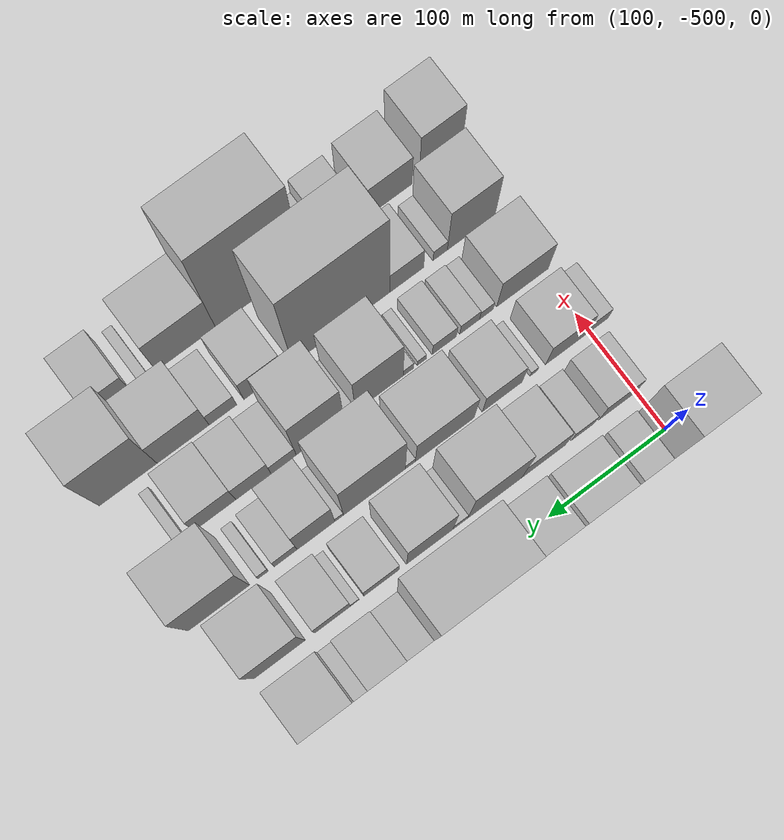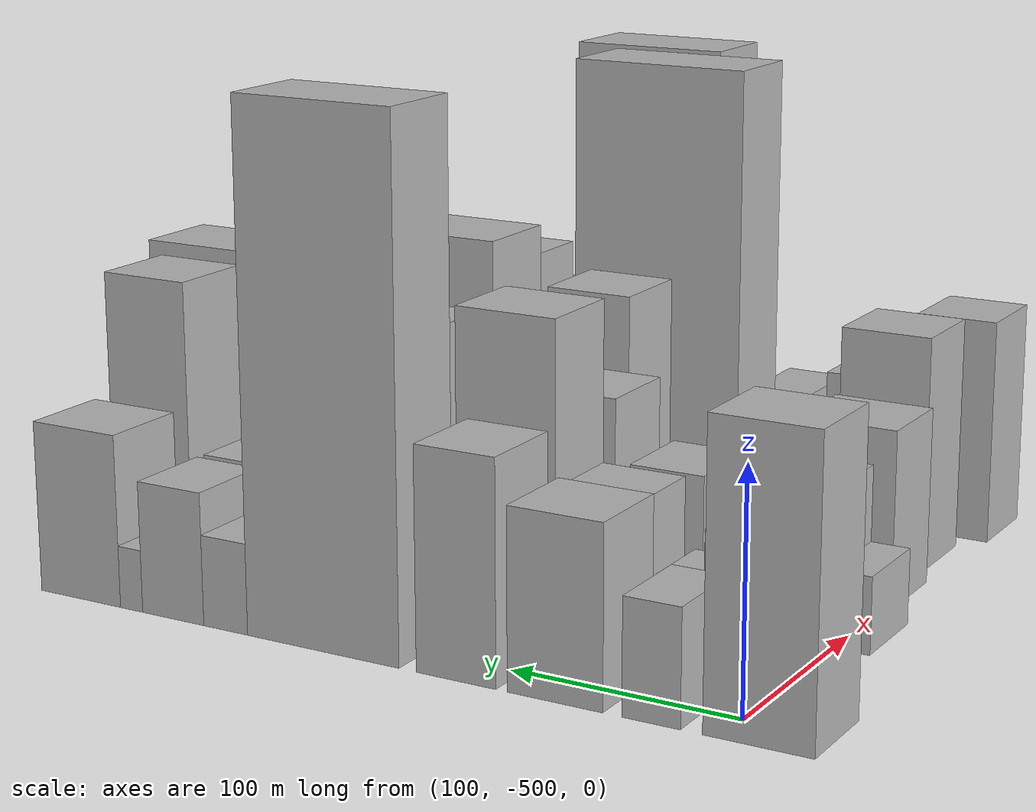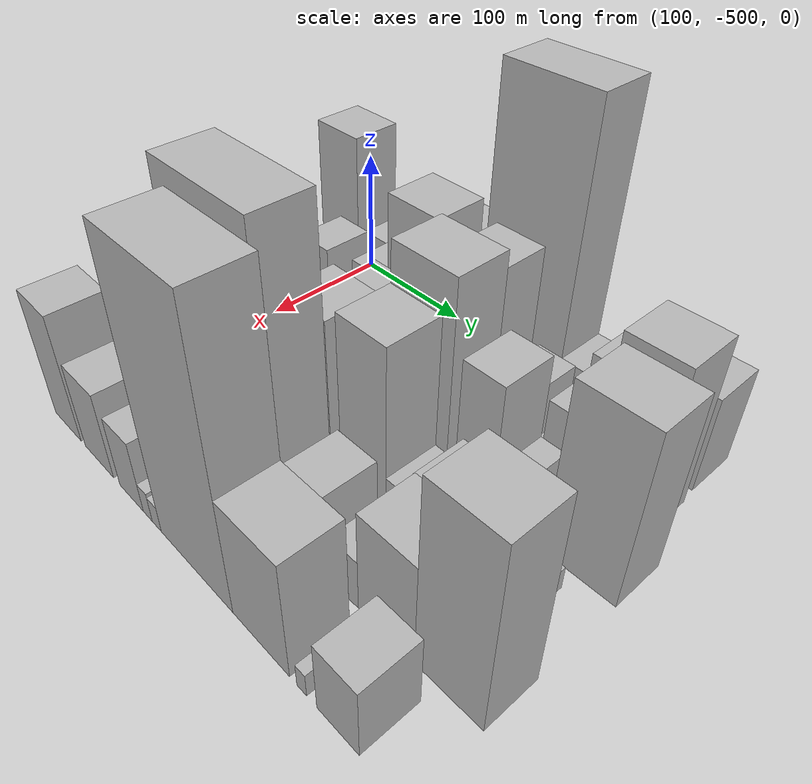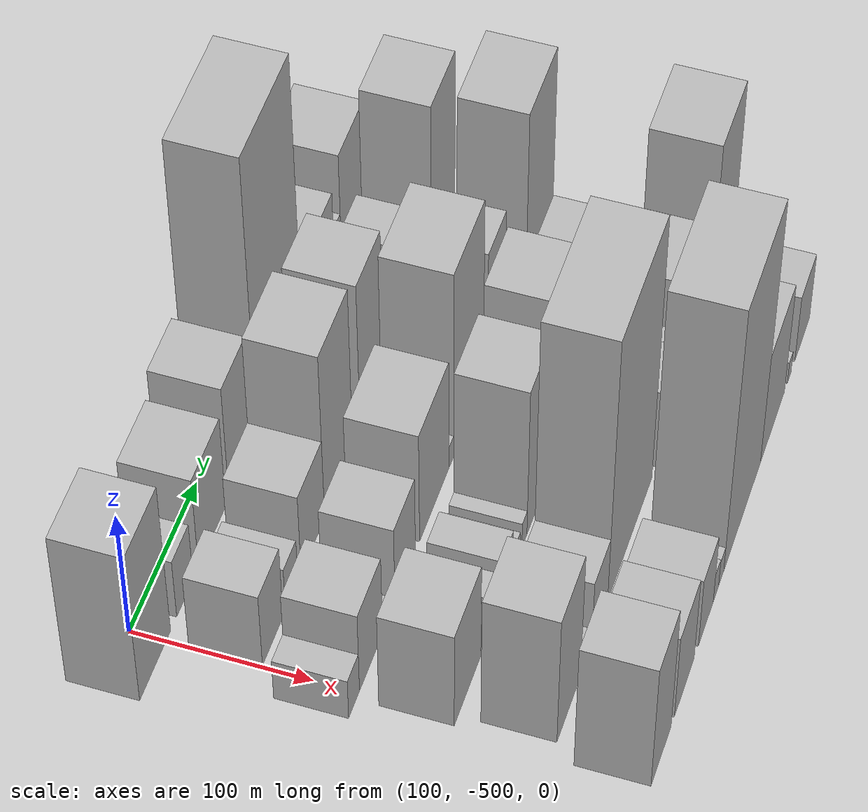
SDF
<sdf version="1.6">
 <world name="default">
  <model name="building_9">
   <static>1</static>
   <pose>100.0000 -515.5603 0 0.000000 0.000000 0.000000</pose>
   <link name="link">
    <pose>0 0 61.50 0 0 0</pose>
    <collision name="collision"><geometry><box><size>40.0000 44.9489 123.0000</size></box></geometry></collision>
    <visual name="visual">
     <cast_shadows>0</cast_shadows>
     <geometry><box><size>40.0000 44.9489 123.0000</size></box></geometry>
     <material>
      <script>
       <uri>model://HANNAS_wall/materials/scripts</uri>
       <uri>model://HANNAS_wall/materials/textures</uri>
       <name>vrc/HANNAS_wall</name>
      </script>
     </material>
    </visual>
   </link>
  </model>
  <model name="building_10">
   <static>1</static>
   <pose>100.0000 -471.8173 0 0.000000 0.000000 0.000000</pose>
   <link name="link">
    <pose>0 0 24.00 0 0 0</pose>
    <collision name="collision"><geometry><box><size>40.0000 24.5371 48.0000</size></box></geometry></collision>
    <visual name="visual">
     <cast_shadows>0</cast_shadows>
     <geometry><box><size>40.0000 24.5371 48.0000</size></box></geometry>
     <material>
      <script>
       <uri>model://HANNAS_wall/materials/scripts</uri>
       <uri>model://HANNAS_wall/materials/textures</uri>
       <name>vrc/HANNAS_wall</name>
      </script>
     </material>
    </visual>
   </link>
  </model>
  <model name="building_11">
   <static>1</static>
   <pose>100.0000 -430.7226 0 0.000000 0.000000 0.000000</pose>
   <link name="link">
    <pose>0 0 37.50 0 0 0</pose>
    <collision name="collision"><geometry><box><size>40.0000 41.6523 75.0000</size></box></geometry></collision>
    <visual name="visual">
     <cast_shadows>0</cast_shadows>
     <geometry><box><size>40.0000 41.6523 75.0000</size></box></geometry>
     <material>
      <script>
       <uri>model://HANNAS_wall/materials/scripts</uri>
       <uri>model://HANNAS_wall/materials/textures</uri>
       <name>vrc/HANNAS_wall</name>
      </script>
     </material>
    </visual>
   </link>
  </model>
  <model name="building_12">
   <static>1</static>
   <pose>100.0000 -386.7678 0 0.000000 0.000000 0.000000</pose>
   <link name="link">
    <pose>0 0 46.50 0 0 0</pose>
    <collision name="collision"><geometry><box><size>40.0000 36.2573 93.0000</size></box></geometry></collision>
    <visual name="visual">
     <cast_shadows>0</cast_shadows>
     <geometry><box><size>40.0000 36.2573 93.0000</size></box></geometry>
     <material>
      <script>
       <uri>model://HANNAS_wall/materials/scripts</uri>
       <uri>model://HANNAS_wall/materials/textures</uri>
       <name>vrc/HANNAS_wall</name>
      </script>
     </material>
    </visual>
   </link>
  </model>
  <model name="building_13">
   <static>1</static>
   <pose>100.0000 -324.0436 0 0.000000 0.000000 0.000000</pose>
   <link name="link">
    <pose>0 0 111.00 0 0 0</pose>
    <collision name="collision"><geometry><box><size>40.0000 73.1910 222.0000</size></box></geometry></collision>
    <visual name="visual">
     <cast_shadows>0</cast_shadows>
     <geometry><box><size>40.0000 73.1910 222.0000</size></box></geometry>
     <material>
      <script>
       <uri>model://HANNAS_wall/materials/scripts</uri>
       <uri>model://HANNAS_wall/materials/textures</uri>
       <name>vrc/HANNAS_wall</name>
      </script>
     </material>
    </visual>
   </link>
  </model>
  <model name="building_14">
   <static>1</static>
   <pose>100.0000 -276.3522 0 0.000000 0.000000 0.000000</pose>
   <link name="link">
    <pose>0 0 19.50 0 0 0</pose>
    <collision name="collision"><geometry><box><size>40.0000 22.1919 39.0000</size></box></geometry></collision>
    <visual name="visual">
     <cast_shadows>0</cast_shadows>
     <geometry><box><size>40.0000 22.1919 39.0000</size></box></geometry>
     <material>
      <script>
       <uri>model://HANNAS_wall/materials/scripts</uri>
       <uri>model://HANNAS_wall/materials/textures</uri>
       <name>vrc/HANNAS_wall</name>
      </script>
     </material>
    </visual>
   </link>
  </model>
  <model name="building_15">
   <static>1</static>
   <pose>100.0000 -249.4096 0 0.000000 0.000000 0.000000</pose>
   <link name="link">
    <pose>0 0 28.50 0 0 0</pose>
    <collision name="collision"><geometry><box><size>40.0000 31.6933 57.0000</size></box></geometry></collision>
    <visual name="visual">
     <cast_shadows>0</cast_shadows>
     <geometry><box><size>40.0000 31.6933 57.0000</size></box></geometry>
     <material>
      <script>
       <uri>model://HANNAS_wall/materials/scripts</uri>
       <uri>model://HANNAS_wall/materials/textures</uri>
       <name>vrc/HANNAS_wall</name>
      </script>
     </material>
    </visual>
   </link>
  </model>
  <model name="building_16">
   <static>1</static>
   <pose>100.0000 -227.6855 0 0.000000 0.000000 0.000000</pose>
   <link name="link">
    <pose>0 0 13.50 0 0 0</pose>
    <collision name="collision"><geometry><box><size>40.0000 11.7548 27.0000</size></box></geometry></collision>
    <visual name="visual">
     <cast_shadows>0</cast_shadows>
     <geometry><box><size>40.0000 11.7548 27.0000</size></box></geometry>
     <material>
      <script>
       <uri>model://HANNAS_wall/materials/scripts</uri>
       <uri>model://HANNAS_wall/materials/textures</uri>
       <name>vrc/HANNAS_wall</name>
      </script>
     </material>
    </visual>
   </link>
  </model>
  <model name="building_17">
   <static>1</static>
   <pose>100.0000 -200.4722 0 0.000000 0.000000 0.000000</pose>
   <link name="link">
    <pose>0 0 37.50 0 0 0</pose>
    <collision name="collision"><geometry><box><size>40.0000 42.6718 75.0000</size></box></geometry></collision>
    <visual name="visual">
     <cast_shadows>0</cast_shadows>
     <geometry><box><size>40.0000 42.6718 75.0000</size></box></geometry>
     <material>
      <script>
       <uri>model://HANNAS_wall/materials/scripts</uri>
       <uri>model://HANNAS_wall/materials/textures</uri>
       <name>vrc/HANNAS_wall</name>
      </script>
     </material>
    </visual>
   </link>
  </model>
  <model name="building_57">
   <static>1</static>
   <pose>152.0000 -483.3467 0 0.000000 0.000000 0.000000</pose>
   <link name="link">
    <pose>0 0 30.00 0 0 0</pose>
    <collision name="collision"><geometry><box><size>40.0000 31.4739 60.0000</size></box></geometry></collision>
    <visual name="visual">
     <cast_shadows>0</cast_shadows>
     <geometry><box><size>40.0000 31.4739 60.0000</size></box></geometry>
     <material>
      <script>
       <uri>model://HANNAS_wall/materials/scripts</uri>
       <uri>model://HANNAS_wall/materials/textures</uri>
       <name>vrc/HANNAS_wall</name>
      </script>
     </material>
    </visual>
   </link>
  </model>
  <model name="building_58">
   <static>1</static>
   <pose>152.0000 -453.8297 0 0.000000 0.000000 0.000000</pose>
   <link name="link">
    <pose>0 0 18.00 0 0 0</pose>
    <collision name="collision"><geometry><box><size>40.0000 19.5602 36.0000</size></box></geometry></collision>
    <visual name="visual">
     <cast_shadows>0</cast_shadows>
     <geometry><box><size>40.0000 19.5602 36.0000</size></box></geometry>
     <material>
      <script>
       <uri>model://HANNAS_wall/materials/scripts</uri>
       <uri>model://HANNAS_wall/materials/textures</uri>
       <name>vrc/HANNAS_wall</name>
      </script>
     </material>
    </visual>
   </link>
  </model>
  <model name="building_59">
   <static>1</static>
   <pose>152.0000 -420.2904 0 0.000000 0.000000 0.000000</pose>
   <link name="link">
    <pose>0 0 33.00 0 0 0</pose>
    <collision name="collision"><geometry><box><size>40.0000 37.5183 66.0000</size></box></geometry></collision>
    <visual name="visual">
     <cast_shadows>0</cast_shadows>
     <geometry><box><size>40.0000 37.5183 66.0000</size></box></geometry>
     <material>
      <script>
       <uri>model://HANNAS_wall/materials/scripts</uri>
       <uri>model://HANNAS_wall/materials/textures</uri>
       <name>vrc/HANNAS_wall</name>
      </script>
     </material>
    </visual>
   </link>
  </model>
  <model name="building_60">
   <static>1</static>
   <pose>152.0000 -378.5794 0 0.000000 0.000000 0.000000</pose>
   <link name="link">
    <pose>0 0 67.50 0 0 0</pose>
    <collision name="collision"><geometry><box><size>40.0000 45.9036 135.0000</size></box></geometry></collision>
    <visual name="visual">
     <cast_shadows>0</cast_shadows>
     <geometry><box><size>40.0000 45.9036 135.0000</size></box></geometry>
     <material>
      <script>
       <uri>model://HANNAS_wall/materials/scripts</uri>
       <uri>model://HANNAS_wall/materials/textures</uri>
       <name>vrc/HANNAS_wall</name>
      </script>
     </material>
    </visual>
   </link>
  </model>
  <model name="building_61">
   <static>1</static>
   <pose>152.0000 -349.3866 0 0.000000 0.000000 0.000000</pose>
   <link name="link">
    <pose>0 0 13.50 0 0 0</pose>
    <collision name="collision"><geometry><box><size>40.0000 12.4821 27.0000</size></box></geometry></collision>
    <visual name="visual">
     <cast_shadows>0</cast_shadows>
     <geometry><box><size>40.0000 12.4821 27.0000</size></box></geometry>
     <material>
      <script>
       <uri>model://HANNAS_wall/materials/scripts</uri>
       <uri>model://HANNAS_wall/materials/textures</uri>
       <name>vrc/HANNAS_wall</name>
      </script>
     </material>
    </visual>
   </link>
  </model>
  <model name="building_62">
   <static>1</static>
   <pose>152.0000 -323.6726 0 0.000000 0.000000 0.000000</pose>
   <link name="link">
    <pose>0 0 61.50 0 0 0</pose>
    <collision name="collision"><geometry><box><size>40.0000 38.9457 123.0000</size></box></geometry></collision>
    <visual name="visual">
     <cast_shadows>0</cast_shadows>
     <geometry><box><size>40.0000 38.9457 123.0000</size></box></geometry>
     <material>
      <script>
       <uri>model://HANNAS_wall/materials/scripts</uri>
       <uri>model://HANNAS_wall/materials/textures</uri>
       <name>vrc/HANNAS_wall</name>
      </script>
     </material>
    </visual>
   </link>
  </model>
  <model name="building_63">
   <static>1</static>
   <pose>152.0000 -283.3929 0 0.000000 0.000000 0.000000</pose>
   <link name="link">
    <pose>0 0 25.50 0 0 0</pose>
    <collision name="collision"><geometry><box><size>40.0000 29.6139 51.0000</size></box></geometry></collision>
    <visual name="visual">
     <cast_shadows>0</cast_shadows>
     <geometry><box><size>40.0000 29.6139 51.0000</size></box></geometry>
     <material>
      <script>
       <uri>model://HANNAS_wall/materials/scripts</uri>
       <uri>model://HANNAS_wall/materials/textures</uri>
       <name>vrc/HANNAS_wall</name>
      </script>
     </material>
    </visual>
   </link>
  </model>
  <model name="building_64">
   <static>1</static>
   <pose>152.0000 -261.0058 0 0.000000 0.000000 0.000000</pose>
   <link name="link">
    <pose>0 0 7.50 0 0 0</pose>
    <collision name="collision"><geometry><box><size>40.0000 7.1602 15.0000</size></box></geometry></collision>
    <visual name="visual">
     <cast_shadows>0</cast_shadows>
     <geometry><box><size>40.0000 7.1602 15.0000</size></box></geometry>
     <material>
      <script>
       <uri>model://HANNAS_wall/materials/scripts</uri>
       <uri>model://HANNAS_wall/materials/textures</uri>
       <name>vrc/HANNAS_wall</name>
      </script>
     </material>
    </visual>
   </link>
  </model>
  <model name="building_65">
   <static>1</static>
   <pose>152.0000 -242.5919 0 0.000000 0.000000 0.000000</pose>
   <link name="link">
    <pose>0 0 27.00 0 0 0</pose>
    <collision name="collision"><geometry><box><size>40.0000 29.6675 54.0000</size></box></geometry></collision>
    <visual name="visual">
     <cast_shadows>0</cast_shadows>
     <geometry><box><size>40.0000 29.6675 54.0000</size></box></geometry>
     <material>
      <script>
       <uri>model://HANNAS_wall/materials/scripts</uri>
       <uri>model://HANNAS_wall/materials/textures</uri>
       <name>vrc/HANNAS_wall</name>
      </script>
     </material>
    </visual>
   </link>
  </model>
  <model name="building_66">
   <static>1</static>
   <pose>152.0000 -198.6308 0 0.000000 0.000000 0.000000</pose>
   <link name="link">
    <pose>0 0 64.50 0 0 0</pose>
    <collision name="collision"><geometry><box><size>40.0000 42.2549 129.0000</size></box></geometry></collision>
    <visual name="visual">
     <cast_shadows>0</cast_shadows>
     <geometry><box><size>40.0000 42.2549 129.0000</size></box></geometry>
     <material>
      <script>
       <uri>model://HANNAS_wall/materials/scripts</uri>
       <uri>model://HANNAS_wall/materials/textures</uri>
       <name>vrc/HANNAS_wall</name>
      </script>
     </material>
    </visual>
   </link>
  </model>
  <model name="building_104">
   <static>1</static>
   <pose>204.0000 -507.3513 0 0.000000 0.000000 0.000000</pose>
   <link name="link">
    <pose>0 0 16.50 0 0 0</pose>
    <collision name="collision"><geometry><box><size>40.0000 17.1514 33.0000</size></box></geometry></collision>
    <visual name="visual">
     <cast_shadows>0</cast_shadows>
     <geometry><box><size>40.0000 17.1514 33.0000</size></box></geometry>
     <material>
      <script>
       <uri>model://HANNAS_wall/materials/scripts</uri>
       <uri>model://HANNAS_wall/materials/textures</uri>
       <name>vrc/HANNAS_wall</name>
      </script>
     </material>
    </visual>
   </link>
  </model>
  <model name="building_105">
   <static>1</static>
   <pose>204.0000 -480.3464 0 0.000000 0.000000 0.000000</pose>
   <link name="link">
    <pose>0 0 33.00 0 0 0</pose>
    <collision name="collision"><geometry><box><size>40.0000 36.8584 66.0000</size></box></geometry></collision>
    <visual name="visual">
     <cast_shadows>0</cast_shadows>
     <geometry><box><size>40.0000 36.8584 66.0000</size></box></geometry>
     <material>
      <script>
       <uri>model://HANNAS_wall/materials/scripts</uri>
       <uri>model://HANNAS_wall/materials/textures</uri>
       <name>vrc/HANNAS_wall</name>
      </script>
     </material>
    </visual>
   </link>
  </model>
  <model name="building_106">
   <static>1</static>
   <pose>204.0000 -451.7700 0 0.000000 0.000000 0.000000</pose>
   <link name="link">
    <pose>0 0 7.50 0 0 0</pose>
    <collision name="collision"><geometry><box><size>40.0000 6.2945 15.0000</size></box></geometry></collision>
    <visual name="visual">
     <cast_shadows>0</cast_shadows>
     <geometry><box><size>40.0000 6.2945 15.0000</size></box></geometry>
     <material>
      <script>
       <uri>model://HANNAS_wall/materials/scripts</uri>
       <uri>model://HANNAS_wall/materials/textures</uri>
       <name>vrc/HANNAS_wall</name>
      </script>
     </material>
    </visual>
   </link>
  </model>
  <model name="building_107">
   <static>1</static>
   <pose>204.0000 -424.6322 0 0.000000 0.000000 0.000000</pose>
   <link name="link">
    <pose>0 0 31.50 0 0 0</pose>
    <collision name="collision"><geometry><box><size>40.0000 33.9812 63.0000</size></box></geometry></collision>
    <visual name="visual">
     <cast_shadows>0</cast_shadows>
     <geometry><box><size>40.0000 33.9812 63.0000</size></box></geometry>
     <material>
      <script>
       <uri>model://HANNAS_wall/materials/scripts</uri>
       <uri>model://HANNAS_wall/materials/textures</uri>
       <name>vrc/HANNAS_wall</name>
      </script>
     </material>
    </visual>
   </link>
  </model>
  <model name="building_108">
   <static>1</static>
   <pose>204.0000 -375.7120 0 0.000000 0.000000 0.000000</pose>
   <link name="link">
    <pose>0 0 45.00 0 0 0</pose>
    <collision name="collision"><geometry><box><size>40.0000 49.8594 90.0000</size></box></geometry></collision>
    <visual name="visual">
     <cast_shadows>0</cast_shadows>
     <geometry><box><size>40.0000 49.8594 90.0000</size></box></geometry>
     <material>
      <script>
       <uri>model://HANNAS_wall/materials/scripts</uri>
       <uri>model://HANNAS_wall/materials/textures</uri>
       <name>vrc/HANNAS_wall</name>
      </script>
     </material>
    </visual>
   </link>
  </model>
  <model name="building_109">
   <static>1</static>
   <pose>204.0000 -346.5106 0 0.000000 0.000000 0.000000</pose>
   <link name="link">
    <pose>0 0 9.00 0 0 0</pose>
    <collision name="collision"><geometry><box><size>40.0000 8.5434 18.0000</size></box></geometry></collision>
    <visual name="visual">
     <cast_shadows>0</cast_shadows>
     <geometry><box><size>40.0000 8.5434 18.0000</size></box></geometry>
     <material>
      <script>
       <uri>model://HANNAS_wall/materials/scripts</uri>
       <uri>model://HANNAS_wall/materials/textures</uri>
       <name>vrc/HANNAS_wall</name>
      </script>
     </material>
    </visual>
   </link>
  </model>
  <model name="building_110">
   <static>1</static>
   <pose>204.0000 -316.1967 0 0.000000 0.000000 0.000000</pose>
   <link name="link">
    <pose>0 0 75.00 0 0 0</pose>
    <collision name="collision"><geometry><box><size>40.0000 52.0843 150.0000</size></box></geometry></collision>
    <visual name="visual">
     <cast_shadows>0</cast_shadows>
     <geometry><box><size>40.0000 52.0843 150.0000</size></box></geometry>
     <material>
      <script>
       <uri>model://HANNAS_wall/materials/scripts</uri>
       <uri>model://HANNAS_wall/materials/textures</uri>
       <name>vrc/HANNAS_wall</name>
      </script>
     </material>
    </visual>
   </link>
  </model>
  <model name="building_111">
   <static>1</static>
   <pose>204.0000 -286.5430 0 0.000000 0.000000 0.000000</pose>
   <link name="link">
    <pose>0 0 7.50 0 0 0</pose>
    <collision name="collision"><geometry><box><size>40.0000 7.2230 15.0000</size></box></geometry></collision>
    <visual name="visual">
     <cast_shadows>0</cast_shadows>
     <geometry><box><size>40.0000 7.2230 15.0000</size></box></geometry>
     <material>
      <script>
       <uri>model://HANNAS_wall/materials/scripts</uri>
       <uri>model://HANNAS_wall/materials/textures</uri>
       <name>vrc/HANNAS_wall</name>
      </script>
     </material>
    </visual>
   </link>
  </model>
  <model name="building_112">
   <static>1</static>
   <pose>204.0000 -267.1239 0 0.000000 0.000000 0.000000</pose>
   <link name="link">
    <pose>0 0 49.50 0 0 0</pose>
    <collision name="collision"><geometry><box><size>40.0000 31.6152 99.0000</size></box></geometry></collision>
    <visual name="visual">
     <cast_shadows>0</cast_shadows>
     <geometry><box><size>40.0000 31.6152 99.0000</size></box></geometry>
     <material>
      <script>
       <uri>model://HANNAS_wall/materials/scripts</uri>
       <uri>model://HANNAS_wall/materials/textures</uri>
       <name>vrc/HANNAS_wall</name>
      </script>
     </material>
    </visual>
   </link>
  </model>
  <model name="building_113">
   <static>1</static>
   <pose>204.0000 -241.7476 0 0.000000 0.000000 0.000000</pose>
   <link name="link">
    <pose>0 0 18.00 0 0 0</pose>
    <collision name="collision"><geometry><box><size>40.0000 19.1375 36.0000</size></box></geometry></collision>
    <visual name="visual">
     <cast_shadows>0</cast_shadows>
     <geometry><box><size>40.0000 19.1375 36.0000</size></box></geometry>
     <material>
      <script>
       <uri>model://HANNAS_wall/materials/scripts</uri>
       <uri>model://HANNAS_wall/materials/textures</uri>
       <name>vrc/HANNAS_wall</name>
      </script>
     </material>
    </visual>
   </link>
  </model>
  <model name="building_114">
   <static>1</static>
   <pose>204.0000 -222.8785 0 0.000000 0.000000 0.000000</pose>
   <link name="link">
    <pose>0 0 10.50 0 0 0</pose>
    <collision name="collision"><geometry><box><size>40.0000 8.6006 21.0000</size></box></geometry></collision>
    <visual name="visual">
     <cast_shadows>0</cast_shadows>
     <geometry><box><size>40.0000 8.6006 21.0000</size></box></geometry>
     <material>
      <script>
       <uri>model://HANNAS_wall/materials/scripts</uri>
       <uri>model://HANNAS_wall/materials/textures</uri>
       <name>vrc/HANNAS_wall</name>
      </script>
     </material>
    </visual>
   </link>
  </model>
  <model name="building_115">
   <static>1</static>
   <pose>204.0000 -186.1275 0 0.000000 0.000000 0.000000</pose>
   <link name="link">
    <pose>0 0 66.00 0 0 0</pose>
    <collision name="collision"><geometry><box><size>40.0000 50.9014 132.0000</size></box></geometry></collision>
    <visual name="visual">
     <cast_shadows>0</cast_shadows>
     <geometry><box><size>40.0000 50.9014 132.0000</size></box></geometry>
     <material>
      <script>
       <uri>model://HANNAS_wall/materials/scripts</uri>
       <uri>model://HANNAS_wall/materials/textures</uri>
       <name>vrc/HANNAS_wall</name>
      </script>
     </material>
    </visual>
   </link>
  </model>
  <model name="building_157">
   <static>1</static>
   <pose>256.0000 -481.7050 0 0.000000 0.000000 0.000000</pose>
   <link name="link">
    <pose>0 0 39.00 0 0 0</pose>
    <collision name="collision"><geometry><box><size>40.0000 44.4117 78.0000</size></box></geometry></collision>
    <visual name="visual">
     <cast_shadows>0</cast_shadows>
     <geometry><box><size>40.0000 44.4117 78.0000</size></box></geometry>
     <material>
      <script>
       <uri>model://HANNAS_wall/materials/scripts</uri>
       <uri>model://HANNAS_wall/materials/textures</uri>
       <name>vrc/HANNAS_wall</name>
      </script>
     </material>
    </visual>
   </link>
  </model>
  <model name="building_158">
   <static>1</static>
   <pose>256.0000 -450.5987 0 0.000000 0.000000 0.000000</pose>
   <link name="link">
    <pose>0 0 12.00 0 0 0</pose>
    <collision name="collision"><geometry><box><size>40.0000 11.8009 24.0000</size></box></geometry></collision>
    <visual name="visual">
     <cast_shadows>0</cast_shadows>
     <geometry><box><size>40.0000 11.8009 24.0000</size></box></geometry>
     <material>
      <script>
       <uri>model://HANNAS_wall/materials/scripts</uri>
       <uri>model://HANNAS_wall/materials/textures</uri>
       <name>vrc/HANNAS_wall</name>
      </script>
     </material>
    </visual>
   </link>
  </model>
  <model name="building_159">
   <static>1</static>
   <pose>256.0000 -436.2266 0 0.000000 0.000000 0.000000</pose>
   <link name="link">
    <pose>0 0 15.00 0 0 0</pose>
    <collision name="collision"><geometry><box><size>40.0000 16.9433 30.0000</size></box></geometry></collision>
    <visual name="visual">
     <cast_shadows>0</cast_shadows>
     <geometry><box><size>40.0000 16.9433 30.0000</size></box></geometry>
     <material>
      <script>
       <uri>model://HANNAS_wall/materials/scripts</uri>
       <uri>model://HANNAS_wall/materials/textures</uri>
       <name>vrc/HANNAS_wall</name>
      </script>
     </material>
    </visual>
   </link>
  </model>
  <model name="building_160">
   <static>1</static>
   <pose>256.0000 -414.4426 0 0.000000 0.000000 0.000000</pose>
   <link name="link">
    <pose>0 0 18.00 0 0 0</pose>
    <collision name="collision"><geometry><box><size>40.0000 20.6248 36.0000</size></box></geometry></collision>
    <visual name="visual">
     <cast_shadows>0</cast_shadows>
     <geometry><box><size>40.0000 20.6248 36.0000</size></box></geometry>
     <material>
      <script>
       <uri>model://HANNAS_wall/materials/scripts</uri>
       <uri>model://HANNAS_wall/materials/textures</uri>
       <name>vrc/HANNAS_wall</name>
      </script>
     </material>
    </visual>
   </link>
  </model>
  <model name="building_161">
   <static>1</static>
   <pose>256.0000 -395.2397 0 0.000000 0.000000 0.000000</pose>
   <link name="link">
    <pose>0 0 9.00 0 0 0</pose>
    <collision name="collision"><geometry><box><size>40.0000 7.7809 18.0000</size></box></geometry></collision>
    <visual name="visual">
     <cast_shadows>0</cast_shadows>
     <geometry><box><size>40.0000 7.7809 18.0000</size></box></geometry>
     <material>
      <script>
       <uri>model://HANNAS_wall/materials/scripts</uri>
       <uri>model://HANNAS_wall/materials/textures</uri>
       <name>vrc/HANNAS_wall</name>
      </script>
     </material>
    </visual>
   </link>
  </model>
  <model name="building_162">
   <static>1</static>
   <pose>256.0000 -383.8752 0 0.000000 0.000000 0.000000</pose>
   <link name="link">
    <pose>0 0 10.50 0 0 0</pose>
    <collision name="collision"><geometry><box><size>40.0000 8.9481 21.0000</size></box></geometry></collision>
    <visual name="visual">
     <cast_shadows>0</cast_shadows>
     <geometry><box><size>40.0000 8.9481 21.0000</size></box></geometry>
     <material>
      <script>
       <uri>model://HANNAS_wall/materials/scripts</uri>
       <uri>model://HANNAS_wall/materials/textures</uri>
       <name>vrc/HANNAS_wall</name>
      </script>
     </material>
    </visual>
   </link>
  </model>
  <model name="building_163">
   <static>1</static>
   <pose>256.0000 -359.1177 0 0.000000 0.000000 0.000000</pose>
   <link name="link">
    <pose>0 0 60.00 0 0 0</pose>
    <collision name="collision"><geometry><box><size>40.0000 40.5668 120.0000</size></box></geometry></collision>
    <visual name="visual">
     <cast_shadows>0</cast_shadows>
     <geometry><box><size>40.0000 40.5668 120.0000</size></box></geometry>
     <material>
      <script>
       <uri>model://HANNAS_wall/materials/scripts</uri>
       <uri>model://HANNAS_wall/materials/textures</uri>
       <name>vrc/HANNAS_wall</name>
      </script>
     </material>
    </visual>
   </link>
  </model>
  <model name="building_164">
   <static>1</static>
   <pose>256.0000 -334.0987 0 0.000000 0.000000 0.000000</pose>
   <link name="link">
    <pose>0 0 10.50 0 0 0</pose>
    <collision name="collision"><geometry><box><size>40.0000 9.4712 21.0000</size></box></geometry></collision>
    <visual name="visual">
     <cast_shadows>0</cast_shadows>
     <geometry><box><size>40.0000 9.4712 21.0000</size></box></geometry>
     <material>
      <script>
       <uri>model://HANNAS_wall/materials/scripts</uri>
       <uri>model://HANNAS_wall/materials/textures</uri>
       <name>vrc/HANNAS_wall</name>
      </script>
     </material>
    </visual>
   </link>
  </model>
  <model name="building_165">
   <static>1</static>
   <pose>256.0000 -309.1031 0 0.000000 0.000000 0.000000</pose>
   <link name="link">
    <pose>0 0 66.00 0 0 0</pose>
    <collision name="collision"><geometry><box><size>40.0000 40.5200 132.0000</size></box></geometry></collision>
    <visual name="visual">
     <cast_shadows>0</cast_shadows>
     <geometry><box><size>40.0000 40.5200 132.0000</size></box></geometry>
     <material>
      <script>
       <uri>model://HANNAS_wall/materials/scripts</uri>
       <uri>model://HANNAS_wall/materials/textures</uri>
       <name>vrc/HANNAS_wall</name>
      </script>
     </material>
    </visual>
   </link>
  </model>
  <model name="building_166">
   <static>1</static>
   <pose>256.0000 -278.2176 0 0.000000 0.000000 0.000000</pose>
   <link name="link">
    <pose>0 0 18.00 0 0 0</pose>
    <collision name="collision"><geometry><box><size>40.0000 21.2509 36.0000</size></box></geometry></collision>
    <visual name="visual">
     <cast_shadows>0</cast_shadows>
     <geometry><box><size>40.0000 21.2509 36.0000</size></box></geometry>
     <material>
      <script>
       <uri>model://HANNAS_wall/materials/scripts</uri>
       <uri>model://HANNAS_wall/materials/textures</uri>
       <name>vrc/HANNAS_wall</name>
      </script>
     </material>
    </visual>
   </link>
  </model>
  <model name="building_167">
   <static>1</static>
   <pose>256.0000 -252.8612 0 0.000000 0.000000 0.000000</pose>
   <link name="link">
    <pose>0 0 28.50 0 0 0</pose>
    <collision name="collision"><geometry><box><size>40.0000 29.4620 57.0000</size></box></geometry></collision>
    <visual name="visual">
     <cast_shadows>0</cast_shadows>
     <geometry><box><size>40.0000 29.4620 57.0000</size></box></geometry>
     <material>
      <script>
       <uri>model://HANNAS_wall/materials/scripts</uri>
       <uri>model://HANNAS_wall/materials/textures</uri>
       <name>vrc/HANNAS_wall</name>
      </script>
     </material>
    </visual>
   </link>
  </model>
  <model name="building_168">
   <static>1</static>
   <pose>256.0000 -220.6167 0 0.000000 0.000000 0.000000</pose>
   <link name="link">
    <pose>0 0 31.50 0 0 0</pose>
    <collision name="collision"><geometry><box><size>40.0000 35.0271 63.0000</size></box></geometry></collision>
    <visual name="visual">
     <cast_shadows>0</cast_shadows>
     <geometry><box><size>40.0000 35.0271 63.0000</size></box></geometry>
     <material>
      <script>
       <uri>model://HANNAS_wall/materials/scripts</uri>
       <uri>model://HANNAS_wall/materials/textures</uri>
       <name>vrc/HANNAS_wall</name>
      </script>
     </material>
    </visual>
   </link>
  </model>
  <model name="building_169">
   <static>1</static>
   <pose>256.0000 -192.2003 0 0.000000 0.000000 0.000000</pose>
   <link name="link">
    <pose>0 0 9.00 0 0 0</pose>
    <collision name="collision"><geometry><box><size>40.0000 7.8057 18.0000</size></box></geometry></collision>
    <visual name="visual">
     <cast_shadows>0</cast_shadows>
     <geometry><box><size>40.0000 7.8057 18.0000</size></box></geometry>
     <material>
      <script>
       <uri>model://HANNAS_wall/materials/scripts</uri>
       <uri>model://HANNAS_wall/materials/textures</uri>
       <name>vrc/HANNAS_wall</name>
      </script>
     </material>
    </visual>
   </link>
  </model>
  <model name="building_216">
   <static>1</static>
   <pose>308.0000 -476.9594 0 0.000000 0.000000 0.000000</pose>
   <link name="link">
    <pose>0 0 52.50 0 0 0</pose>
    <collision name="collision"><geometry><box><size>40.0000 41.2845 105.0000</size></box></geometry></collision>
    <visual name="visual">
     <cast_shadows>0</cast_shadows>
     <geometry><box><size>40.0000 41.2845 105.0000</size></box></geometry>
     <material>
      <script>
       <uri>model://HANNAS_wall/materials/scripts</uri>
       <uri>model://HANNAS_wall/materials/textures</uri>
       <name>vrc/HANNAS_wall</name>
      </script>
     </material>
    </visual>
   </link>
  </model>
  <model name="building_217">
   <static>1</static>
   <pose>308.0000 -450.1327 0 0.000000 0.000000 0.000000</pose>
   <link name="link">
    <pose>0 0 13.50 0 0 0</pose>
    <collision name="collision"><geometry><box><size>40.0000 12.3688 27.0000</size></box></geometry></collision>
    <visual name="visual">
     <cast_shadows>0</cast_shadows>
     <geometry><box><size>40.0000 12.3688 27.0000</size></box></geometry>
     <material>
      <script>
       <uri>model://HANNAS_wall/materials/scripts</uri>
       <uri>model://HANNAS_wall/materials/textures</uri>
       <name>vrc/HANNAS_wall</name>
      </script>
     </material>
    </visual>
   </link>
  </model>
  <model name="building_218">
   <static>1</static>
   <pose>308.0000 -421.5359 0 0.000000 0.000000 0.000000</pose>
   <link name="link">
    <pose>0 0 27.00 0 0 0</pose>
    <collision name="collision"><geometry><box><size>40.0000 28.8248 54.0000</size></box></geometry></collision>
    <visual name="visual">
     <cast_shadows>0</cast_shadows>
     <geometry><box><size>40.0000 28.8248 54.0000</size></box></geometry>
     <material>
      <script>
       <uri>model://HANNAS_wall/materials/scripts</uri>
       <uri>model://HANNAS_wall/materials/textures</uri>
       <name>vrc/HANNAS_wall</name>
      </script>
     </material>
    </visual>
   </link>
  </model>
  <model name="building_219">
   <static>1</static>
   <pose>308.0000 -365.5465 0 0.000000 0.000000 0.000000</pose>
   <link name="link">
    <pose>0 0 106.50 0 0 0</pose>
    <collision name="collision"><geometry><box><size>40.0000 83.1540 213.0000</size></box></geometry></collision>
    <visual name="visual">
     <cast_shadows>0</cast_shadows>
     <geometry><box><size>40.0000 83.1540 213.0000</size></box></geometry>
     <material>
      <script>
       <uri>model://HANNAS_wall/materials/scripts</uri>
       <uri>model://HANNAS_wall/materials/textures</uri>
       <name>vrc/HANNAS_wall</name>
      </script>
     </material>
    </visual>
   </link>
  </model>
  <model name="building_220">
   <static>1</static>
   <pose>308.0000 -299.4069 0 0.000000 0.000000 0.000000</pose>
   <link name="link">
    <pose>0 0 31.50 0 0 0</pose>
    <collision name="collision"><geometry><box><size>40.0000 33.1252 63.0000</size></box></geometry></collision>
    <visual name="visual">
     <cast_shadows>0</cast_shadows>
     <geometry><box><size>40.0000 33.1252 63.0000</size></box></geometry>
     <material>
      <script>
       <uri>model://HANNAS_wall/materials/scripts</uri>
       <uri>model://HANNAS_wall/materials/textures</uri>
       <name>vrc/HANNAS_wall</name>
      </script>
     </material>
    </visual>
   </link>
  </model>
  <model name="building_221">
   <static>1</static>
   <pose>308.0000 -265.2248 0 0.000000 0.000000 0.000000</pose>
   <link name="link">
    <pose>0 0 19.50 0 0 0</pose>
    <collision name="collision"><geometry><box><size>40.0000 23.2389 39.0000</size></box></geometry></collision>
    <visual name="visual">
     <cast_shadows>0</cast_shadows>
     <geometry><box><size>40.0000 23.2389 39.0000</size></box></geometry>
     <material>
      <script>
       <uri>model://HANNAS_wall/materials/scripts</uri>
       <uri>model://HANNAS_wall/materials/textures</uri>
       <name>vrc/HANNAS_wall</name>
      </script>
     </material>
    </visual>
   </link>
  </model>
  <model name="building_222">
   <static>1</static>
   <pose>308.0000 -231.7571 0 0.000000 0.000000 0.000000</pose>
   <link name="link">
    <pose>0 0 39.00 0 0 0</pose>
    <collision name="collision"><geometry><box><size>40.0000 43.6965 78.0000</size></box></geometry></collision>
    <visual name="visual">
     <cast_shadows>0</cast_shadows>
     <geometry><box><size>40.0000 43.6965 78.0000</size></box></geometry>
     <material>
      <script>
       <uri>model://HANNAS_wall/materials/scripts</uri>
       <uri>model://HANNAS_wall/materials/textures</uri>
       <name>vrc/HANNAS_wall</name>
      </script>
     </material>
    </visual>
   </link>
  </model>
  <model name="building_223">
   <static>1</static>
   <pose>308.0000 -185.8009 0 0.000000 0.000000 0.000000</pose>
   <link name="link">
    <pose>0 0 70.50 0 0 0</pose>
    <collision name="collision"><geometry><box><size>40.0000 48.2161 141.0000</size></box></geometry></collision>
    <visual name="visual">
     <cast_shadows>0</cast_shadows>
     <geometry><box><size>40.0000 48.2161 141.0000</size></box></geometry>
     <material>
      <script>
       <uri>model://HANNAS_wall/materials/scripts</uri>
       <uri>model://HANNAS_wall/materials/textures</uri>
       <name>vrc/HANNAS_wall</name>
      </script>
     </material>
    </visual>
   </link>
  </model>
  <model name="building_263">
   <static>1</static>
   <pose>360.0000 -489.6243 0 0.000000 0.000000 0.000000</pose>
   <link name="link">
    <pose>0 0 51.00 0 0 0</pose>
    <collision name="collision"><geometry><box><size>40.0000 36.8348 102.0000</size></box></geometry></collision>
    <visual name="visual">
     <cast_shadows>0</cast_shadows>
     <geometry><box><size>40.0000 36.8348 102.0000</size></box></geometry>
     <material>
      <script>
       <uri>model://HANNAS_wall/materials/scripts</uri>
       <uri>model://HANNAS_wall/materials/textures</uri>
       <name>vrc/HANNAS_wall</name>
      </script>
     </material>
    </visual>
   </link>
  </model>
  <model name="building_264">
   <static>1</static>
   <pose>360.0000 -446.5187 0 0.000000 0.000000 0.000000</pose>
   <link name="link">
    <pose>0 0 34.50 0 0 0</pose>
    <collision name="collision"><geometry><box><size>40.0000 37.3765 69.0000</size></box></geometry></collision>
    <visual name="visual">
     <cast_shadows>0</cast_shadows>
     <geometry><box><size>40.0000 37.3765 69.0000</size></box></geometry>
     <material>
      <script>
       <uri>model://HANNAS_wall/materials/scripts</uri>
       <uri>model://HANNAS_wall/materials/textures</uri>
       <name>vrc/HANNAS_wall</name>
      </script>
     </material>
    </visual>
   </link>
  </model>
  <model name="building_265">
   <static>1</static>
   <pose>360.0000 -405.5391 0 0.000000 0.000000 0.000000</pose>
   <link name="link">
    <pose>0 0 28.50 0 0 0</pose>
    <collision name="collision"><geometry><box><size>40.0000 28.5827 57.0000</size></box></geometry></collision>
    <visual name="visual">
     <cast_shadows>0</cast_shadows>
     <geometry><box><size>40.0000 28.5827 57.0000</size></box></geometry>
     <material>
      <script>
       <uri>model://HANNAS_wall/materials/scripts</uri>
       <uri>model://HANNAS_wall/materials/textures</uri>
       <name>vrc/HANNAS_wall</name>
      </script>
     </material>
    </visual>
   </link>
  </model>
  <model name="building_266">
   <static>1</static>
   <pose>360.0000 -386.0243 0 0.000000 0.000000 0.000000</pose>
   <link name="link">
    <pose>0 0 12.00 0 0 0</pose>
    <collision name="collision"><geometry><box><size>40.0000 10.4470 24.0000</size></box></geometry></collision>
    <visual name="visual">
     <cast_shadows>0</cast_shadows>
     <geometry><box><size>40.0000 10.4470 24.0000</size></box></geometry>
     <material>
      <script>
       <uri>model://HANNAS_wall/materials/scripts</uri>
       <uri>model://HANNAS_wall/materials/textures</uri>
       <name>vrc/HANNAS_wall</name>
      </script>
     </material>
    </visual>
   </link>
  </model>
  <model name="building_267">
   <static>1</static>
   <pose>360.0000 -375.6883 0 0.000000 0.000000 0.000000</pose>
   <link name="link">
    <pose>0 0 10.50 0 0 0</pose>
    <collision name="collision"><geometry><box><size>40.0000 10.2249 21.0000</size></box></geometry></collision>
    <visual name="visual">
     <cast_shadows>0</cast_shadows>
     <geometry><box><size>40.0000 10.2249 21.0000</size></box></geometry>
     <material>
      <script>
       <uri>model://HANNAS_wall/materials/scripts</uri>
       <uri>model://HANNAS_wall/materials/textures</uri>
       <name>vrc/HANNAS_wall</name>
      </script>
     </material>
    </visual>
   </link>
  </model>
  <model name="building_268">
   <static>1</static>
   <pose>360.0000 -333.6656 0 0.000000 0.000000 0.000000</pose>
   <link name="link">
    <pose>0 0 106.50 0 0 0</pose>
    <collision name="collision"><geometry><box><size>40.0000 73.8204 213.0000</size></box></geometry></collision>
    <visual name="visual">
     <cast_shadows>0</cast_shadows>
     <geometry><box><size>40.0000 73.8204 213.0000</size></box></geometry>
     <material>
      <script>
       <uri>model://HANNAS_wall/materials/scripts</uri>
       <uri>model://HANNAS_wall/materials/textures</uri>
       <name>vrc/HANNAS_wall</name>
      </script>
     </material>
    </visual>
   </link>
  </model>
  <model name="building_269">
   <static>1</static>
   <pose>360.0000 -271.6630 0 0.000000 0.000000 0.000000</pose>
   <link name="link">
    <pose>0 0 45.00 0 0 0</pose>
    <collision name="collision"><geometry><box><size>40.0000 50.1848 90.0000</size></box></geometry></collision>
    <visual name="visual">
     <cast_shadows>0</cast_shadows>
     <geometry><box><size>40.0000 50.1848 90.0000</size></box></geometry>
     <material>
      <script>
       <uri>model://HANNAS_wall/materials/scripts</uri>
       <uri>model://HANNAS_wall/materials/textures</uri>
       <name>vrc/HANNAS_wall</name>
      </script>
     </material>
    </visual>
   </link>
  </model>
  <model name="building_270">
   <static>1</static>
   <pose>360.0000 -236.6081 0 0.000000 0.000000 0.000000</pose>
   <link name="link">
    <pose>0 0 9.00 0 0 0</pose>
    <collision name="collision"><geometry><box><size>40.0000 7.9251 18.0000</size></box></geometry></collision>
    <visual name="visual">
     <cast_shadows>0</cast_shadows>
     <geometry><box><size>40.0000 7.9251 18.0000</size></box></geometry>
     <material>
      <script>
       <uri>model://HANNAS_wall/materials/scripts</uri>
       <uri>model://HANNAS_wall/materials/textures</uri>
       <name>vrc/HANNAS_wall</name>
      </script>
     </material>
    </visual>
   </link>
  </model>
  <model name="building_271">
   <static>1</static>
   <pose>360.0000 -208.7038 0 0.000000 0.000000 0.000000</pose>
   <link name="link">
    <pose>0 0 27.00 0 0 0</pose>
    <collision name="collision"><geometry><box><size>40.0000 31.8835 54.0000</size></box></geometry></collision>
    <visual name="visual">
     <cast_shadows>0</cast_shadows>
     <geometry><box><size>40.0000 31.8835 54.0000</size></box></geometry>
     <material>
      <script>
       <uri>model://HANNAS_wall/materials/scripts</uri>
       <uri>model://HANNAS_wall/materials/textures</uri>
       <name>vrc/HANNAS_wall</name>
      </script>
     </material>
    </visual>
   </link>
  </model>
 </world>
</sdf>
